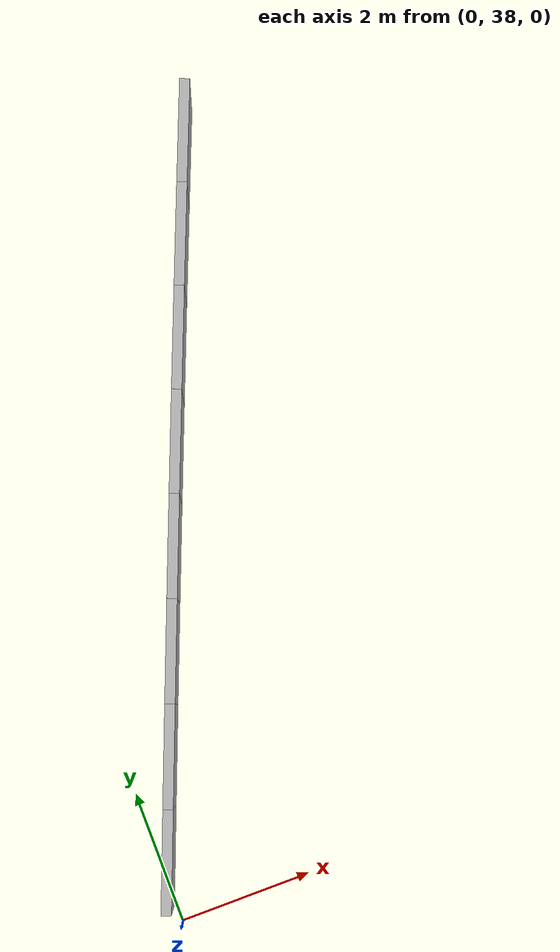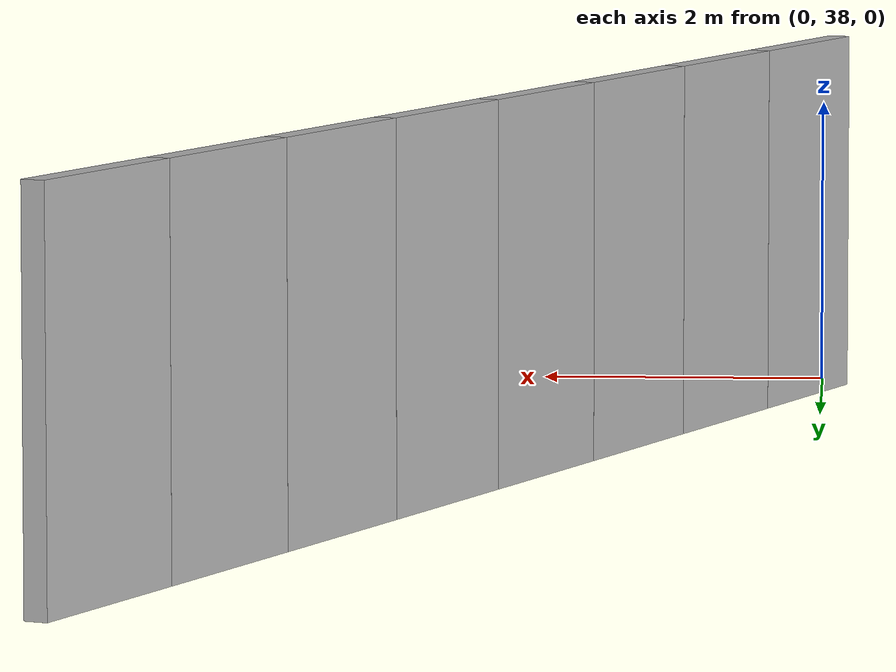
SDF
<?xml version="1.0" ?>
<sdf version="1.6">
  <model name="sps_0432">
    <pose frame="">0 0 0 0 -0 0</pose>
    <static>1</static>
    <self_collide>0</self_collide>
    <allow_auto_disable>0</allow_auto_disable>
    <link name="Wall4964">
      <kinematic>0</kinematic>
      <gravity>1</gravity>
      <self_collide>0</self_collide>
      <collision name="collision">
        <geometry>
          <box>
            <size>1.49692 0.15 2.5</size>
          </box>
        </geometry>
        <pose frame="">0 0 0 0 -0 0</pose>
      </collision>
      <visual name="visual">
        <geometry>
          <box>
            <size>1.49692 0.15 2.5</size>
          </box>
        </geometry>
        <pose frame="">0 0 0 0 -0 0</pose>
        <cast_shadows>1</cast_shadows>
        <transparency>0.0</transparency>
      </visual>
      <pose frame="">4.05785 48.7042 1.25 0 0 -1.95713</pose>
    </link>
    <link name="Wall4965">
      <kinematic>0</kinematic>
      <gravity>1</gravity>
      <self_collide>0</self_collide>
      <collision name="collision">
        <geometry>
          <box>
            <size>1.49641 0.15 2.5</size>
          </box>
        </geometry>
        <pose frame="">0 0 0 0 -0 0</pose>
      </collision>
      <visual name="visual">
        <geometry>
          <box>
            <size>1.49641 0.15 2.5</size>
          </box>
        </geometry>
        <pose frame="">0 0 0 0 -0 0</pose>
        <cast_shadows>1</cast_shadows>
        <transparency>0.0</transparency>
      </visual>
      <pose frame="">3.49496 47.3174 1.25 0 0 -1.95564</pose>
    </link>
    <link name="Wall4966">
      <kinematic>0</kinematic>
      <gravity>1</gravity>
      <self_collide>0</self_collide>
      <collision name="collision">
        <geometry>
          <box>
            <size>1.49657 0.15 2.5</size>
          </box>
        </geometry>
        <pose frame="">0 0 0 0 -0 0</pose>
      </collision>
      <visual name="visual">
        <geometry>
          <box>
            <size>1.49657 0.15 2.5</size>
          </box>
        </geometry>
        <pose frame="">0 0 0 0 -0 0</pose>
        <cast_shadows>1</cast_shadows>
        <transparency>0.0</transparency>
      </visual>
      <pose frame="">2.93426 45.9299 1.25 0 0 -1.95405</pose>
    </link>
    <link name="Wall4967">
      <kinematic>0</kinematic>
      <gravity>1</gravity>
      <self_collide>0</self_collide>
      <collision name="collision">
        <geometry>
          <box>
            <size>1.4964 0.15 2.5</size>
          </box>
        </geometry>
        <pose frame="">0 0 0 0 -0 0</pose>
      </collision>
      <visual name="visual">
        <geometry>
          <box>
            <size>1.4964 0.15 2.5</size>
          </box>
        </geometry>
        <pose frame="">0 0 0 0 -0 0</pose>
        <cast_shadows>1</cast_shadows>
        <transparency>0.0</transparency>
      </visual>
      <pose frame="">2.37585 44.5415 1.25 0 0 -1.95234</pose>
    </link>
    <link name="Wall4968">
      <kinematic>0</kinematic>
      <gravity>1</gravity>
      <self_collide>0</self_collide>
      <collision name="collision">
        <geometry>
          <box>
            <size>1.49661 0.15 2.5</size>
          </box>
        </geometry>
        <pose frame="">0 0 0 0 -0 0</pose>
      </collision>
      <visual name="visual">
        <geometry>
          <box>
            <size>1.49661 0.15 2.5</size>
          </box>
        </geometry>
        <pose frame="">0 0 0 0 -0 0</pose>
        <cast_shadows>1</cast_shadows>
        <transparency>0.0</transparency>
      </visual>
      <pose frame="">1.81966 43.1522 1.25 0 0 -1.95083</pose>
    </link>
    <link name="Wall4969">
      <kinematic>0</kinematic>
      <gravity>1</gravity>
      <self_collide>0</self_collide>
      <collision name="collision">
        <geometry>
          <box>
            <size>1.49656 0.15 2.5</size>
          </box>
        </geometry>
        <pose frame="">0 0 0 0 -0 0</pose>
      </collision>
      <visual name="visual">
        <geometry>
          <box>
            <size>1.49656 0.15 2.5</size>
          </box>
        </geometry>
        <pose frame="">0 0 0 0 -0 0</pose>
        <cast_shadows>1</cast_shadows>
        <transparency>0.0</transparency>
      </visual>
      <pose frame="">1.26556 41.762 1.25 0 0 -1.94931</pose>
    </link>
    <link name="Wall4970">
      <kinematic>0</kinematic>
      <gravity>1</gravity>
      <self_collide>0</self_collide>
      <collision name="collision">
        <geometry>
          <box>
            <size>1.49647 0.15 2.5</size>
          </box>
        </geometry>
        <pose frame="">0 0 0 0 -0 0</pose>
      </collision>
      <visual name="visual">
        <geometry>
          <box>
            <size>1.49647 0.15 2.5</size>
          </box>
        </geometry>
        <pose frame="">0 0 0 0 -0 0</pose>
        <cast_shadows>1</cast_shadows>
        <transparency>0.0</transparency>
      </visual>
      <pose frame="">0.713554 40.371 1.25 0 0 -1.94784</pose>
    </link>
    <link name="Wall4971">
      <kinematic>0</kinematic>
      <gravity>1</gravity>
      <self_collide>0</self_collide>
      <collision name="collision">
        <geometry>
          <box>
            <size>1.49659 0.15 2.5</size>
          </box>
        </geometry>
        <pose frame="">0 0 0 0 -0 0</pose>
      </collision>
      <visual name="visual">
        <geometry>
          <box>
            <size>1.49659 0.15 2.5</size>
          </box>
        </geometry>
        <pose frame="">0 0 0 0 -0 0</pose>
        <cast_shadows>1</cast_shadows>
        <transparency>0.0</transparency>
      </visual>
      <pose frame="">0.163749 38.9791 1.25 0 0 -1.94615</pose>
    </link>
  </model>
</sdf>
